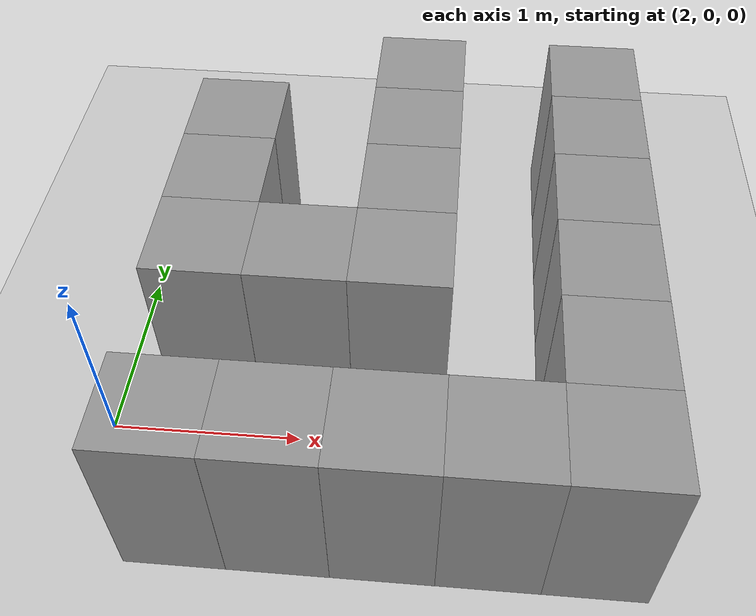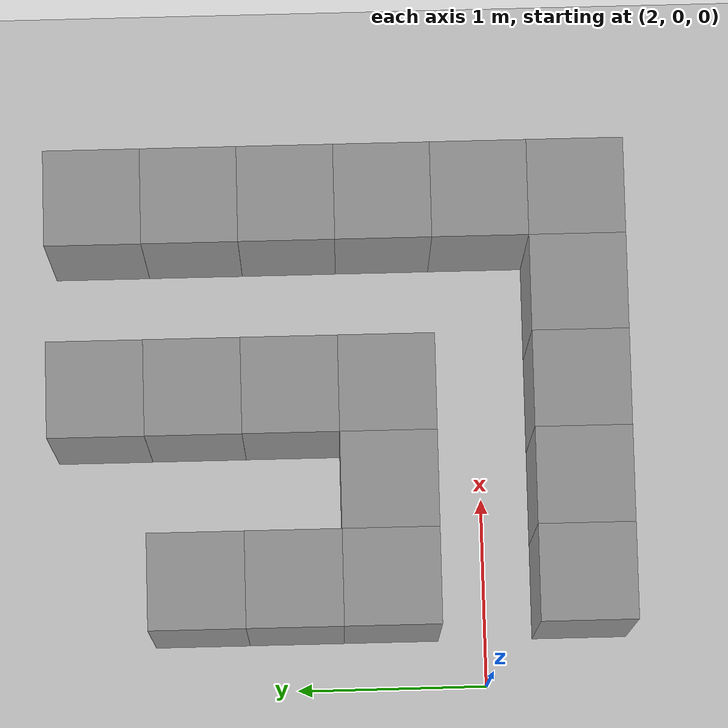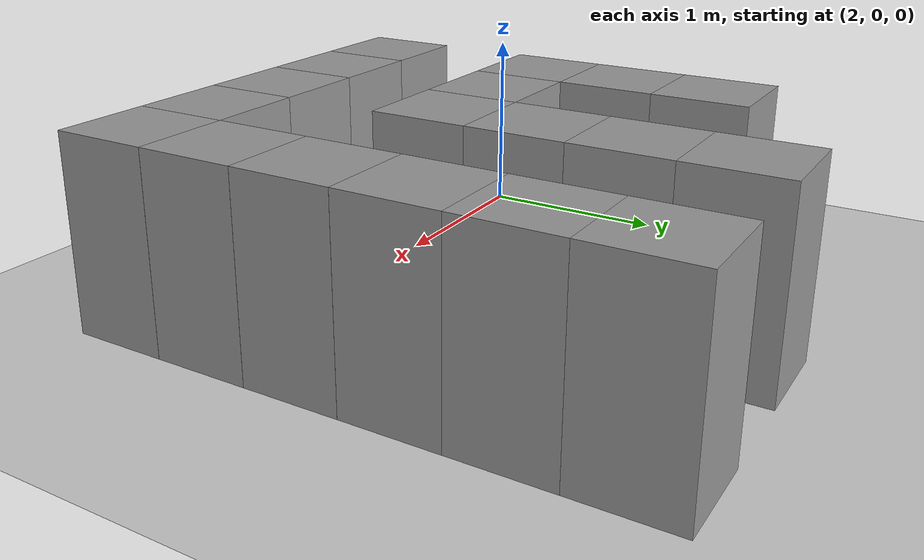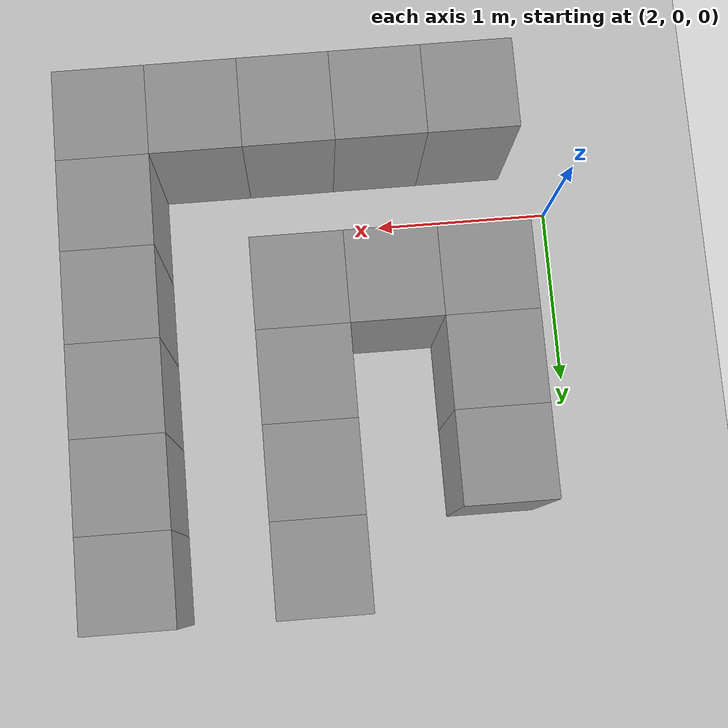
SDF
<sdf version="1.7">
 <world name="default">
  <model name="ground_plane">
   <static>1</static>
   <link name="link">
    <collision name="collision">
     <geometry><plane><normal>0 0 1</normal><size>100 100</size></plane></geometry>
     <surface>
      <contact><collide_bitmask>65535</collide_bitmask></contact>
      <friction><ode><mu>100</mu><mu2>50</mu2></ode></friction>
     </surface>
    </collision>
    <visual name="visual">
     <cast_shadows>0</cast_shadows>
     <geometry><plane><normal>0 0 1</normal><size>100 100</size></plane></geometry>
     <material>
      <script><uri>file://media/materials/scripts/gazebo.material</uri><name>Gazebo/Grey</name></script>
     </material>
    </visual>
   </link>
  </model>
  <model name="unit_box_6">
   <pose>2.5 -0.5 0.5 0 -1e-05 -0.000818</pose>
   <link name="link">
    <inertial>
     <mass>1</mass>
     <inertia>
      <ixx>0.166667</ixx>
      <ixy>0</ixy>
      <ixz>0</ixz>
      <iyy>0.166667</iyy>
      <iyz>0</iyz>
      <izz>0.166667</izz>
     </inertia>
    </inertial>
    <collision name="collision"><geometry><box><size>0.5 0.5 1</size></box></geometry></collision>
    <visual name="visual">
     <geometry><box><size>0.5 0.5 1</size></box></geometry>
     <material>
      <script><name>Gazebo/Grey</name><uri>file://media/materials/scripts/gazebo.material</uri></script>
     </material>
    </visual>
   </link>
  </model>
  <model name="unit_box_7">
   <pose>3.0 -0.5 0.5 0 -1e-05 -0.000818</pose>
   <link name="link">
    <inertial>
     <mass>1</mass>
     <inertia>
      <ixx>0.166667</ixx>
      <ixy>0</ixy>
      <ixz>0</ixz>
      <iyy>0.166667</iyy>
      <iyz>0</iyz>
      <izz>0.166667</izz>
     </inertia>
    </inertial>
    <collision name="collision"><geometry><box><size>0.5 0.5 1</size></box></geometry></collision>
    <visual name="visual">
     <geometry><box><size>0.5 0.5 1</size></box></geometry>
     <material>
      <script><name>Gazebo/Grey</name><uri>file://media/materials/scripts/gazebo.material</uri></script>
     </material>
    </visual>
   </link>
  </model>
  <model name="unit_box_8">
   <pose>3.5 -0.5 0.5 0 -1e-05 -0.000818</pose>
   <link name="link">
    <inertial>
     <mass>1</mass>
     <inertia>
      <ixx>0.166667</ixx>
      <ixy>0</ixy>
      <ixz>0</ixz>
      <iyy>0.166667</iyy>
      <iyz>0</iyz>
      <izz>0.166667</izz>
     </inertia>
    </inertial>
    <collision name="collision"><geometry><box><size>0.5 0.5 1</size></box></geometry></collision>
    <visual name="visual">
     <geometry><box><size>0.5 0.5 1</size></box></geometry>
     <material>
      <script><name>Gazebo/Grey</name><uri>file://media/materials/scripts/gazebo.material</uri></script>
     </material>
    </visual>
   </link>
  </model>
  <model name="unit_box_9">
   <pose>4.0 -0.5 0.5 0 -1e-05 -0.000818</pose>
   <link name="link">
    <inertial>
     <mass>1</mass>
     <inertia>
      <ixx>0.166667</ixx>
      <ixy>0</ixy>
      <ixz>0</ixz>
      <iyy>0.166667</iyy>
      <iyz>0</iyz>
      <izz>0.166667</izz>
     </inertia>
    </inertial>
    <collision name="collision"><geometry><box><size>0.5 0.5 1</size></box></geometry></collision>
    <visual name="visual">
     <geometry><box><size>0.5 0.5 1</size></box></geometry>
     <material>
      <script><name>Gazebo/Grey</name><uri>file://media/materials/scripts/gazebo.material</uri></script>
     </material>
    </visual>
   </link>
  </model>
  <model name="unit_box_10">
   <pose>4.5 -0.5 0.5 0 -1e-05 -0.000818</pose>
   <link name="link">
    <inertial>
     <mass>1</mass>
     <inertia>
      <ixx>0.166667</ixx>
      <ixy>0</ixy>
      <ixz>0</ixz>
      <iyy>0.166667</iyy>
      <iyz>0</iyz>
      <izz>0.166667</izz>
     </inertia>
    </inertial>
    <collision name="collision"><geometry><box><size>0.5 0.5 1</size></box></geometry></collision>
    <visual name="visual">
     <geometry><box><size>0.5 0.5 1</size></box></geometry>
     <material>
      <script><name>Gazebo/Grey</name><uri>file://media/materials/scripts/gazebo.material</uri></script>
     </material>
    </visual>
   </link>
  </model>
  <model name="unit_box_13">
   <pose>4.5 0.0 0.5 0 -1e-05 -0.000818</pose>
   <link name="link">
    <inertial>
     <mass>1</mass>
     <inertia>
      <ixx>0.166667</ixx>
      <ixy>0</ixy>
      <ixz>0</ixz>
      <iyy>0.166667</iyy>
      <iyz>0</iyz>
      <izz>0.166667</izz>
     </inertia>
    </inertial>
    <collision name="collision"><geometry><box><size>0.5 0.5 1</size></box></geometry></collision>
    <visual name="visual">
     <geometry><box><size>0.5 0.5 1</size></box></geometry>
     <material>
      <script><name>Gazebo/Grey</name><uri>file://media/materials/scripts/gazebo.material</uri></script>
     </material>
    </visual>
   </link>
  </model>
  <model name="unit_box_18">
   <pose>2.5 0.5 0.5 0 -1e-05 -0.000818</pose>
   <link name="link">
    <inertial>
     <mass>1</mass>
     <inertia>
      <ixx>0.166667</ixx>
      <ixy>0</ixy>
      <ixz>0</ixz>
      <iyy>0.166667</iyy>
      <iyz>0</iyz>
      <izz>0.166667</izz>
     </inertia>
    </inertial>
    <collision name="collision"><geometry><box><size>0.5 0.5 1</size></box></geometry></collision>
    <visual name="visual">
     <geometry><box><size>0.5 0.5 1</size></box></geometry>
     <material>
      <script><name>Gazebo/Grey</name><uri>file://media/materials/scripts/gazebo.material</uri></script>
     </material>
    </visual>
   </link>
  </model>
  <model name="unit_box_19">
   <pose>3.0 0.5 0.5 0 -1e-05 -0.000818</pose>
   <link name="link">
    <inertial>
     <mass>1</mass>
     <inertia>
      <ixx>0.166667</ixx>
      <ixy>0</ixy>
      <ixz>0</ixz>
      <iyy>0.166667</iyy>
      <iyz>0</iyz>
      <izz>0.166667</izz>
     </inertia>
    </inertial>
    <collision name="collision"><geometry><box><size>0.5 0.5 1</size></box></geometry></collision>
    <visual name="visual">
     <geometry><box><size>0.5 0.5 1</size></box></geometry>
     <material>
      <script><name>Gazebo/Grey</name><uri>file://media/materials/scripts/gazebo.material</uri></script>
     </material>
    </visual>
   </link>
  </model>
  <model name="unit_box_20">
   <pose>3.5 0.5 0.5 0 -1e-05 -0.000818</pose>
   <link name="link">
    <inertial>
     <mass>1</mass>
     <inertia>
      <ixx>0.166667</ixx>
      <ixy>0</ixy>
      <ixz>0</ixz>
      <iyy>0.166667</iyy>
      <iyz>0</iyz>
      <izz>0.166667</izz>
     </inertia>
    </inertial>
    <collision name="collision"><geometry><box><size>0.5 0.5 1</size></box></geometry></collision>
    <visual name="visual">
     <geometry><box><size>0.5 0.5 1</size></box></geometry>
     <material>
      <script><name>Gazebo/Grey</name><uri>file://media/materials/scripts/gazebo.material</uri></script>
     </material>
    </visual>
   </link>
  </model>
  <model name="unit_box_21">
   <pose>4.5 0.5 0.5 0 -1e-05 -0.000818</pose>
   <link name="link">
    <inertial>
     <mass>1</mass>
     <inertia>
      <ixx>0.166667</ixx>
      <ixy>0</ixy>
      <ixz>0</ixz>
      <iyy>0.166667</iyy>
      <iyz>0</iyz>
      <izz>0.166667</izz>
     </inertia>
    </inertial>
    <collision name="collision"><geometry><box><size>0.5 0.5 1</size></box></geometry></collision>
    <visual name="visual">
     <geometry><box><size>0.5 0.5 1</size></box></geometry>
     <material>
      <script><name>Gazebo/Grey</name><uri>file://media/materials/scripts/gazebo.material</uri></script>
     </material>
    </visual>
   </link>
  </model>
  <model name="unit_box_24">
   <pose>2.5 1.0 0.5 0 -1e-05 -0.000818</pose>
   <link name="link">
    <inertial>
     <mass>1</mass>
     <inertia>
      <ixx>0.166667</ixx>
      <ixy>0</ixy>
      <ixz>0</ixz>
      <iyy>0.166667</iyy>
      <iyz>0</iyz>
      <izz>0.166667</izz>
     </inertia>
    </inertial>
    <collision name="collision"><geometry><box><size>0.5 0.5 1</size></box></geometry></collision>
    <visual name="visual">
     <geometry><box><size>0.5 0.5 1</size></box></geometry>
     <material>
      <script><name>Gazebo/Grey</name><uri>file://media/materials/scripts/gazebo.material</uri></script>
     </material>
    </visual>
   </link>
  </model>
  <model name="unit_box_25">
   <pose>3.5 1.0 0.5 0 -1e-05 -0.000818</pose>
   <link name="link">
    <inertial>
     <mass>1</mass>
     <inertia>
      <ixx>0.166667</ixx>
      <ixy>0</ixy>
      <ixz>0</ixz>
      <iyy>0.166667</iyy>
      <iyz>0</iyz>
      <izz>0.166667</izz>
     </inertia>
    </inertial>
    <collision name="collision"><geometry><box><size>0.5 0.5 1</size></box></geometry></collision>
    <visual name="visual">
     <geometry><box><size>0.5 0.5 1</size></box></geometry>
     <material>
      <script><name>Gazebo/Grey</name><uri>file://media/materials/scripts/gazebo.material</uri></script>
     </material>
    </visual>
   </link>
  </model>
  <model name="unit_box_26">
   <pose>4.5 1.0 0.5 0 -1e-05 -0.000818</pose>
   <link name="link">
    <inertial>
     <mass>1</mass>
     <inertia>
      <ixx>0.166667</ixx>
      <ixy>0</ixy>
      <ixz>0</ixz>
      <iyy>0.166667</iyy>
      <iyz>0</iyz>
      <izz>0.166667</izz>
     </inertia>
    </inertial>
    <collision name="collision"><geometry><box><size>0.5 0.5 1</size></box></geometry></collision>
    <visual name="visual">
     <geometry><box><size>0.5 0.5 1</size></box></geometry>
     <material>
      <script><name>Gazebo/Grey</name><uri>file://media/materials/scripts/gazebo.material</uri></script>
     </material>
    </visual>
   </link>
  </model>
  <model name="unit_box_31">
   <pose>2.5 1.5 0.5 0 -1e-05 -0.000818</pose>
   <link name="link">
    <inertial>
     <mass>1</mass>
     <inertia>
      <ixx>0.166667</ixx>
      <ixy>0</ixy>
      <ixz>0</ixz>
      <iyy>0.166667</iyy>
      <iyz>0</iyz>
      <izz>0.166667</izz>
     </inertia>
    </inertial>
    <collision name="collision"><geometry><box><size>0.5 0.5 1</size></box></geometry></collision>
    <visual name="visual">
     <geometry><box><size>0.5 0.5 1</size></box></geometry>
     <material>
      <script><name>Gazebo/Grey</name><uri>file://media/materials/scripts/gazebo.material</uri></script>
     </material>
    </visual>
   </link>
  </model>
  <model name="unit_box_32">
   <pose>3.5 1.5 0.5 0 -1e-05 -0.000818</pose>
   <link name="link">
    <inertial>
     <mass>1</mass>
     <inertia>
      <ixx>0.166667</ixx>
      <ixy>0</ixy>
      <ixz>0</ixz>
      <iyy>0.166667</iyy>
      <iyz>0</iyz>
      <izz>0.166667</izz>
     </inertia>
    </inertial>
    <collision name="collision"><geometry><box><size>0.5 0.5 1</size></box></geometry></collision>
    <visual name="visual">
     <geometry><box><size>0.5 0.5 1</size></box></geometry>
     <material>
      <script><name>Gazebo/Grey</name><uri>file://media/materials/scripts/gazebo.material</uri></script>
     </material>
    </visual>
   </link>
  </model>
  <model name="unit_box_33">
   <pose>4.5 1.5 0.5 0 -1e-05 -0.000818</pose>
   <link name="link">
    <inertial>
     <mass>1</mass>
     <inertia>
      <ixx>0.166667</ixx>
      <ixy>0</ixy>
      <ixz>0</ixz>
      <iyy>0.166667</iyy>
      <iyz>0</iyz>
      <izz>0.166667</izz>
     </inertia>
    </inertial>
    <collision name="collision"><geometry><box><size>0.5 0.5 1</size></box></geometry></collision>
    <visual name="visual">
     <geometry><box><size>0.5 0.5 1</size></box></geometry>
     <material>
      <script><name>Gazebo/Grey</name><uri>file://media/materials/scripts/gazebo.material</uri></script>
     </material>
    </visual>
   </link>
  </model>
  <model name="unit_box_37">
   <pose>3.5 2.0 0.5 0 -1e-05 -0.000818</pose>
   <link name="link">
    <inertial>
     <mass>1</mass>
     <inertia>
      <ixx>0.166667</ixx>
      <ixy>0</ixy>
      <ixz>0</ixz>
      <iyy>0.166667</iyy>
      <iyz>0</iyz>
      <izz>0.166667</izz>
     </inertia>
    </inertial>
    <collision name="collision"><geometry><box><size>0.5 0.5 1</size></box></geometry></collision>
    <visual name="visual">
     <geometry><box><size>0.5 0.5 1</size></box></geometry>
     <material>
      <script><name>Gazebo/Grey</name><uri>file://media/materials/scripts/gazebo.material</uri></script>
     </material>
    </visual>
   </link>
  </model>
  <model name="unit_box_38">
   <pose>4.5 2.0 0.5 0 -1e-05 -0.000818</pose>
   <link name="link">
    <inertial>
     <mass>1</mass>
     <inertia>
      <ixx>0.166667</ixx>
      <ixy>0</ixy>
      <ixz>0</ixz>
      <iyy>0.166667</iyy>
      <iyz>0</iyz>
      <izz>0.166667</izz>
     </inertia>
    </inertial>
    <collision name="collision"><geometry><box><size>0.5 0.5 1</size></box></geometry></collision>
    <visual name="visual">
     <geometry><box><size>0.5 0.5 1</size></box></geometry>
     <material>
      <script><name>Gazebo/Grey</name><uri>file://media/materials/scripts/gazebo.material</uri></script>
     </material>
    </visual>
   </link>
  </model>
 </world>
</sdf>
